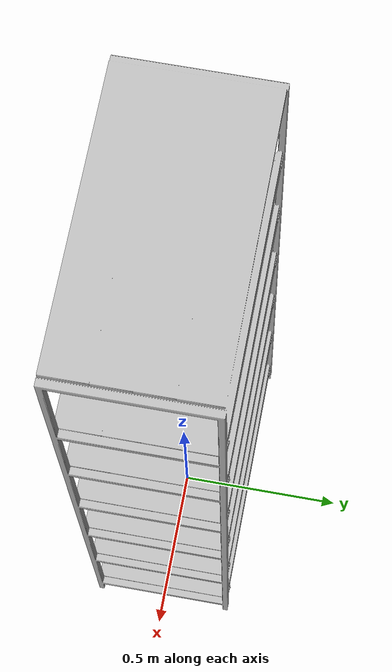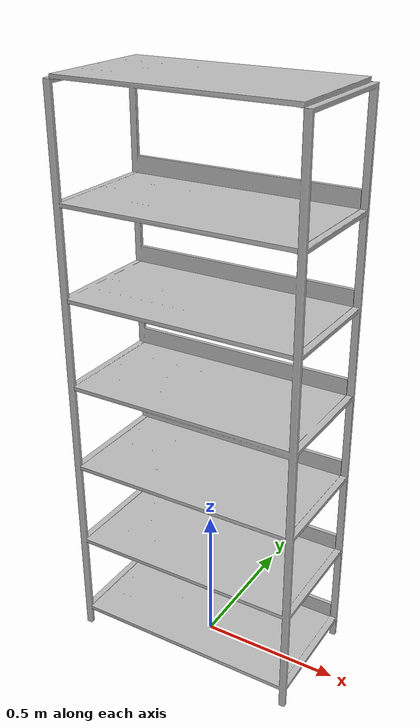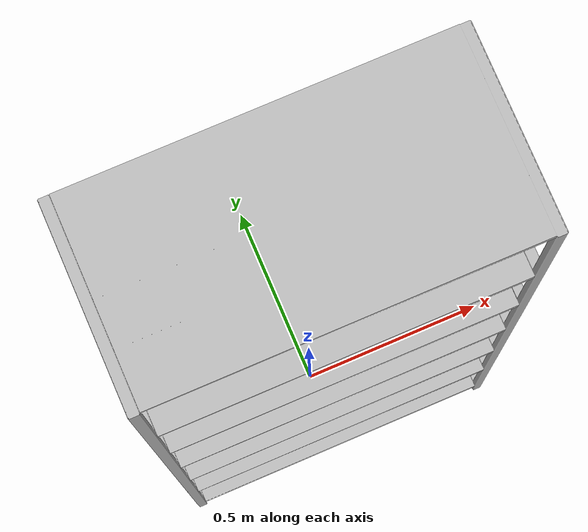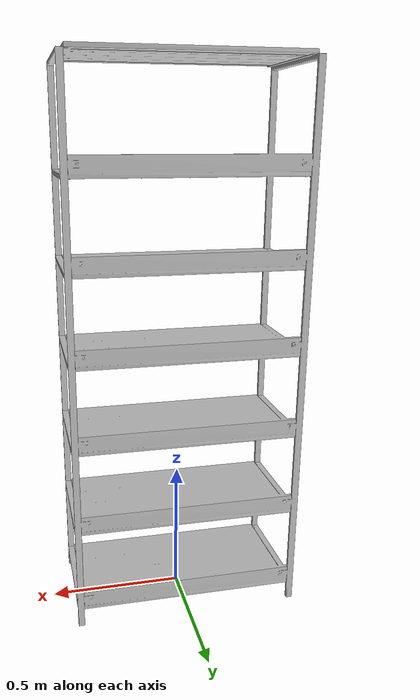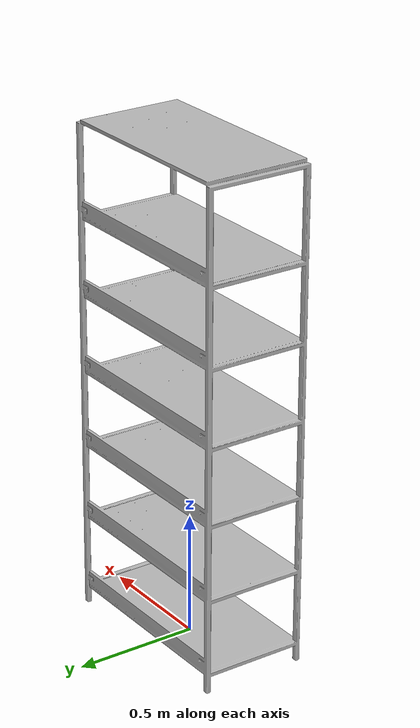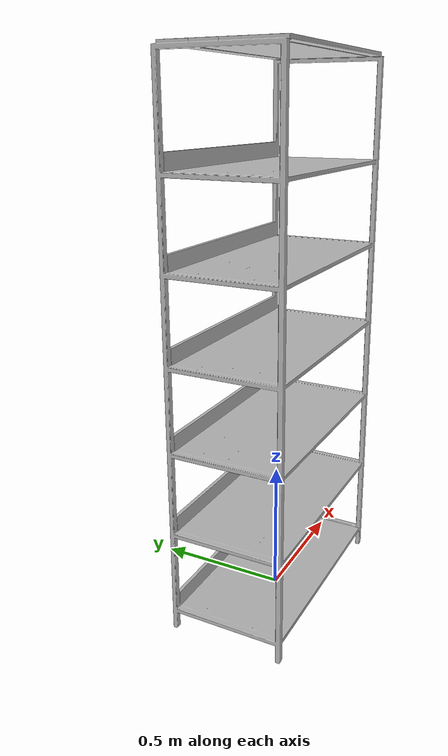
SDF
<sdf version="1.6">
	<model name="Bookcases_Ocf3b7a3af58b_lod0">
		<link name="main_link">
			<visual name="visual_RootNode">
				<geometry>
					<mesh>
						<uri>model://Bookcases_Ocf3b7a3af58b_lod0/meshes/visual_RootNode.dae</uri>
					</mesh>
				</geometry>
			</visual>
			<collision name="collision_RootNode_lod0_0">
				<geometry>
					<mesh>
						<uri>model://Bookcases_Ocf3b7a3af58b_lod0/meshes/collision_RootNode_lod0_0.dae</uri>
					</mesh>
				</geometry>
			</collision>
		</link>
	</model>
</sdf>
